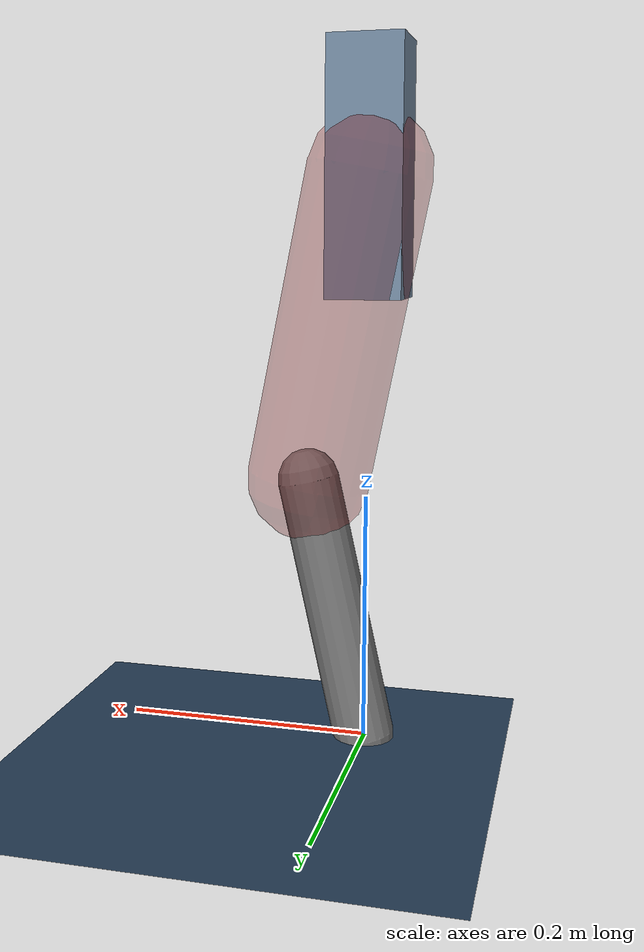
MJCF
<mujoco model="Hopper2D">
	<compiler inertiafromgeom="true" angle="radian" />
	<option timestep="0.001" integrator="implicit" cone="elliptic" solver="Newton" tolerance="1e-10" />

	<default>
		<geom contype="1" conaffinity="1" condim="3" friction="2 0.005 0.0001" solref="0.005 1" />
		<joint limited="true" damping="0.1" />
	</default>

	<asset>
		<texture name="skybox" type="skybox" builtin="gradient" rgb1=".4 .6 .8" rgb2="0 0 0" width="800" height="800" />
		<texture name="grid" type="2d" builtin="checker" rgb1=".1 .2 .3" rgb2=".2 .3 .4" width="300" height="300" mark="edge" markrgb=".2 .3 .4" />
		<material name="ground" texture="grid" texrepeat="1 1" texuniform="true" reflectance="0.1" />
		<material name="leg" rgba="0.5 0.6 0.7 1" />
	</asset>

	<worldbody>

		<geom name="floor" type="plane" size="5 5 0.25" material="ground" />

		<light directional="false" diffuse="0.8 0.8 0.8" specular="0.3 0.3 0.3" pos="0 0 2" dir="0 0 -1" />
		<light mode="targetbodycom" target="base" directional="false" diffuse="0.8 0.8 0.8" specular="0.3 0.3 0.3" pos="0 0 2" dir="0 0 -1" />

		<camera name="fixed" pos="0 -2 1" xyaxes="1 0 0 0 0 1" />
		<camera name="tracking" mode="trackcom" pos="0 -3 1" />

		<body name="root" pos="0 0 0.4600550638155776">
			<joint name="slide_x" type="slide" axis="1 0 0" range="-100 100" />
			<joint name="slide_z" type="slide" axis="0 0 1" range="0 10" />

			<body name="base" pos="0 0 0">
				<geom name="torso" type="box" size="0.03 0.03 0.1" mass="2.386" material="leg" />

				<body name="link1" pos="0 0 0" euler="0 1.3787344761063605 0">
					<joint type="hinge" axis="0 -1 0" pos="0 0 0" name="hinge1" limited="true" range="-3.14 3.14" stiffness="0" damping="0.1" />
					<geom name="thigh" type="capsule" fromto="0 0 0 0.2519374500473085 0 0" size="0.05" rgba="0.5 0 0 0.3" mass="0.8614373701230021" />

					<body name="link2" pos="0.2519374500473085 0 0" euler="0 0.41436870854939384 0">
						<joint type="hinge" axis="0 -1 0" pos="0 0 0" name="hinge2" limited="true" range="-3.14 3.14" stiffness="0" damping="0.1" />
						<geom name="shank" type="capsule" fromto="0 0 0 0.21811761376826908 0 0" size="0.025" mass="0.41609409101461525" />

					</body>
				</body>
			</body>
		</body>
	</worldbody>

	<actuator>
		<motor name="torque1" joint="hinge1" ctrlrange="-77.3201546972758 77.3201546972758" ctrllimited="true" gear="1" />
		<motor name="torque2" joint="hinge2" ctrlrange="-98.13591814196911 98.13591814196911" ctrllimited="true" gear="1" />
	</actuator>
</mujoco>
